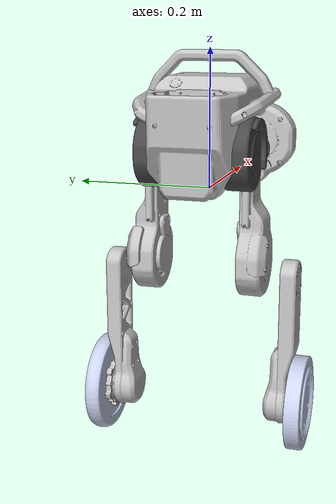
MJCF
<mujoco model="pineapple">
  <compiler angle="radian" meshdir="../v1/meshes/"/>
  <option cone="elliptic" impratio="100"/>
  <option gravity='0 0 -9.81' iterations='50' solver='Newton' timestep='0.002'/>

  <default>
      <default class="pinapple">
          <joint damping="0.1" armature="0.01" frictionloss="0.2"/>
          <motor ctrlrange="-23.7 23.7"/>
          <default class="hip">
              <joint axis="1 0 0" range="0 1.57"/>
              <motor ctrlrange="-23.7 23.7"/>
          </default>
          <default class="thigh">
              <joint axis="0 1 0" range="0 2.1"/>
              <motor ctrlrange="-23.7 23.7"/>
          </default>
          <default class="calf">
              <joint axis="0 1 0" range="-3.3 0"/>
              <motor ctrlrange="-23.7 23.7"/>
          </default>
          <default class="visual">
              <geom type="mesh" contype="0" conaffinity="0" group="2"/>
          </default>
          <default class="collision">
              <geom group="3" type="mesh" rgba="1 0 0 0.3" />
              <default class="wheel">
              <geom size="0.022" priority="1" condim="6"
                  friction="0.8 0.02 0.01"/>
              </default>
          </default>
      </default>
  </default>

  <asset>
    <mesh name="base_link" file="base_link.STL"/>
    <mesh name="base_collision" file="base_collision.STL"/>
    <mesh name="L_hip" file="L_hip.STL"/>
    <mesh name="L_thigh" file="L_thigh.STL"/>
    <mesh name="L_thigh_collision" file="L_thigh_collision.STL"/>
    <mesh name="L_calf" file="L_calf.STL"/>
    <mesh name="L_calf_collision" file="L_calf_collision.STL"/>
    <mesh name="L_wheel" file="L_wheel.STL"/>
    <mesh name="R_hip" file="R_hip.STL"/>
    <mesh name="R_thigh" file="R_thigh.STL"/>
    <mesh name="R_thigh_collision" file="R_thigh_collision.STL"/>
    <mesh name="R_calf" file="R_calf.STL"/>
    <mesh name="R_calf_collision" file="R_calf_collision.STL"/>
    <mesh name="R_wheel" file="R_wheel.STL"/>
    <mesh name="depth_cam" file="depth_cam.STL"/>
  </asset>

  <worldbody>
    <body name="base_link" pos="0 0 0" >
      <inertial pos="-0.02228595 0.00164283 0.04544062" quat="1 0 0 0" mass="2.85" diaginertia="0.01804185 0.01102779 0.00752637" />
      <freejoint />
      <site name="imu" pos="0 0 0" />
      <geom type="mesh" contype="0" conaffinity="0" group="1" density="0" rgba="0.752941 0.752941 0.752941 1" mesh="base_link"/>
      <geom pos="0.134943 0 0.120596" quat="0.939693 0 0.34202 0" type="mesh" contype="0" conaffinity="0" group="1" density="0" rgba="0 1 0 1" mesh="depth_cam"/>
      <body name="L_hip" pos="0 0.06125 0.0610009" >
        <inertial pos="0.00055295 -0.00275734 0.0000001" quat="0.494955 0.500535 0.504889 0.499571" mass="0.573" diaginertia="0.00092932 0.00058596 0.00066651"/>
        <joint name="L_hip_joint" class="hip"/>
        <geom type="mesh" contype="0" conaffinity="0" group="1" density="0" rgba="0.278431 0.278431 0.278431 1" mesh="L_hip"/>
         <body name="L_thigh" pos="0 0.01 0">
          <inertial pos="-0.01168842 0.03735700 -0.11773770" quat="0.707037 0.0235137 -0.0231196 0.706408" mass="0.75" diaginertia="0.00561841 0.00538335 0.00058483"/>
          <joint name="L_thigh_joint" class="thigh"/>
          <geom type="mesh" contype="0" conaffinity="0" group="1" density="0" rgba="0.752941 0.752941 0.752941 1" mesh="L_thigh"/>
         <body name="L_calf" pos="0 0.0388671 -0.190001">
            <inertial pos="0.00008556 0.03238223 -0.04718516" quat="0.70557 -0.00113142 0.000811229 0.708639" mass="0.5" diaginertia="0.00347570 0.00341630 0.00019864"/>
            <joint name="L_calf_joint" class="calf"/>
            <geom type="mesh" contype="0" conaffinity="0" group="1" density="0" rgba="0.752941 0.752941 0.752941 1" mesh="L_calf"/>
            <body name="L_wheel" pos="0 0.0421818 -0.19">
              <inertial pos="0 0.0125028 0" quat="0.421371 0.567852 0.567833 0.421374" mass="0.305" diaginertia="0.00105427 0.000539803 0.000539767"/>
              <joint name="L_wheel_joint" pos="0 0 0" axis="0 1 0" actuatorfrcrange="-3.69 3.69"/>
              <geom type="mesh" contype="0" conaffinity="0" group="1" density="0" rgba="0.792157 0.819608 0.933333 1" mesh="L_wheel"/>
              <geom size="0.075 0.013" pos="0 0.013 0" quat="0.707105 0.707108 0 0" type="cylinder" rgba="0.792157 0.819608 0.933333 1" class="wheel"/>
            </body>
          </body>
        </body>
      </body>
      <body name="R_hip" pos="0 -0.0612499999999985 0.0610009280869152">
        <inertial pos="0.00055295 0.00275734 0.0000001" quat="0.49948 0.504979 0.500438 0.495052" mass="0.573" diaginertia="0.00092932 0.00058596 0.00066651"/>
        <joint name="R_hip_joint" pos="0 0 0" axis="1 0 0"/>
        <geom type="mesh" contype="0" conaffinity="0" group="1" density="0" rgba="0.278431 0.278431 0.278431 1" mesh="R_hip"/>
        <body name="R_thigh" pos="0 0.01 0">
          <inertial pos="-0.01168842 -0.03735700 -0.11773770" quat="0.706435 -0.0231085 0.0235257 0.70701" mass="0.75" diaginertia="0.00561798 0.00538327 0.00058450"/>
          <joint name="R_thigh_joint" pos="0 0 0" axis="0 1 0" range="0 2.1" actuatorfrcrange="-23.7 23.7"/>
          <geom type="mesh" contype="0" conaffinity="0" group="1" density="0" rgba="0.752941 0.752941 0.752941 1" mesh="R_thigh"/>
          <body name="R_calf" pos="0 -0.0388671106492234 -0.190000930017624">
            <inertial pos="0.00008556 -0.03238223 -0.04718516" quat="0.706888 -0.000592015 -0.000499787 0.707325" mass="0.5" diaginertia="0.00368544 0.00362217 0.00007514"/>
            <joint name="R_calf_joint" pos="0 0 0" axis="0 1 0" range="-3.3 0" actuatorfrcrange="-23.7 23.7"/>
            <geom type="mesh" contype="0" conaffinity="0" group="1" density="0" rgba="0.752941 0.752941 0.752941 1" mesh="R_calf"/>
            <body name="R_wheel" pos="0 -0.0421817545313912 -0.190000000000001">
              <inertial pos="0 -0.01250278 0" quat="0.297335 0.641547 0.641565 0.297329" mass="0.305" diaginertia="0.00105426 0.000539805 0.000539745"/>
              <joint name="R_wheel_joint" pos="0 0 0" axis="0 1 0" actuatorfrcrange="-3.69 3.69"/>
              <geom type="mesh" contype="0" conaffinity="0" group="1" density="0" rgba="0.792157 0.819608 0.933333 1" mesh="R_wheel"/>
              <geom size="0.075 0.013" pos="0 -0.013 0" quat="0.707105 0.707108 0 0" type="cylinder" rgba="0.792157 0.819608 0.933333 1" class="wheel"/>
            </body>
          </body>
        </body>
      </body>
    </body>
  </worldbody>

  <actuator>
      <motor name="L_hip" joint="L_hip_joint" ctrllimited="true" ctrlrange="-1000 1000"  gear="1"/>
      <motor name="L_thigh" joint="L_thigh_joint" ctrllimited="true" ctrlrange="-1000 1000"  gear="1"/>
      <motor name="L_calf" joint="L_calf_joint" ctrllimited="true" ctrlrange="-1000 1000"  gear="1"/>
      <motor name="L_wheel" joint="L_wheel_joint" ctrllimited="true" ctrlrange="-1000 1000" gear="1"/>

      <motor name="R_hip" joint="R_hip_joint" ctrllimited="true" ctrlrange="-1000 1000"  gear="1"/>
      <motor name="R_thigh" joint="R_thigh_joint" ctrllimited="true" ctrlrange="-1000 1000"  gear="1"/>
      <motor name="R_calf" joint="R_calf_joint" ctrllimited="true" ctrlrange="-1000 1000"  gear="1"/>
      <motor name="R_wheel" joint="R_wheel_joint" ctrllimited="true" ctrlrange="-1000 1000" gear="1"/>

  </actuator>

  <sensor>

      <jointpos name="L_hip_pos" joint="L_hip_joint" />
      <jointpos name="L_thigh_pos" joint="L_thigh_joint" />
      <jointpos name="L_calf_pos" joint="L_calf_joint" />
      <jointpos name="L_wheel_pos" joint="L_wheel_joint" />

      <jointpos name="R_hip_pos" joint="R_hip_joint" />
      <jointpos name="R_thigh_pos" joint="R_thigh_joint" />
      <jointpos name="R_calf_pos" joint="R_calf_joint" />
      <jointpos name="R_wheel_pos" joint="R_wheel_joint" />

      <jointvel name="L_hip_vel" joint="L_hip_joint" />
      <jointvel name="L_thigh_vel" joint="L_thigh_joint" />
      <jointvel name="L_calf_vel" joint="L_calf_joint" />
      <jointvel name="L_wheel_vel" joint="L_wheel_joint" noise="0.0"/>

      <jointvel name="R_hip_vel" joint="R_hip_joint" />
      <jointvel name="R_thigh_vel" joint="R_thigh_joint" />
      <jointvel name="R_calf_vel" joint="R_calf_joint" />
      <jointvel name="R_wheel_vel" joint="R_wheel_joint" noise="0.0"/>

      <jointactuatorfrc name="L_hip_torque" joint="L_hip_joint" noise="0.01" />
      <jointactuatorfrc name="L_thigh_torque" joint="L_thigh_joint" noise="0.01" />
      <jointactuatorfrc name="L_calf_torque" joint="L_calf_joint" noise="0.01" />
      <jointactuatorfrc name="L_wheel_torque" joint="L_wheel_joint" />

      <jointactuatorfrc name="R_hip_torque" joint="R_hip_joint" noise="0.01" />
      <jointactuatorfrc name="R_thigh_torque" joint="R_thigh_joint" noise="0.01" />
      <jointactuatorfrc name="R_calf_torque" joint="R_calf_joint" noise="0.01" />
      <jointactuatorfrc name="R_wheel_torque" joint="R_wheel_joint" />

      <framequat name="imu_quat" objtype="site" objname="imu" noise="0.0"/>
      <gyro name="imu_gyro" site="imu" noise="0.0"/>
      <accelerometer name="imu_acc" site="imu" />

      <framepos name="frame_pos" objtype="site" objname="imu" />
      <framelinvel name="frame_lin_vel" objtype="site" objname="imu" />
      <frameangvel name="frame_ang_vel" objtype="site" objname="imu" />
  </sensor>

</mujoco>
